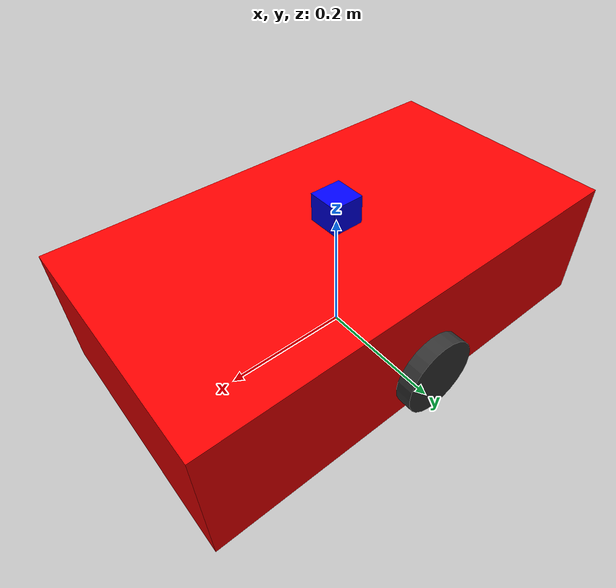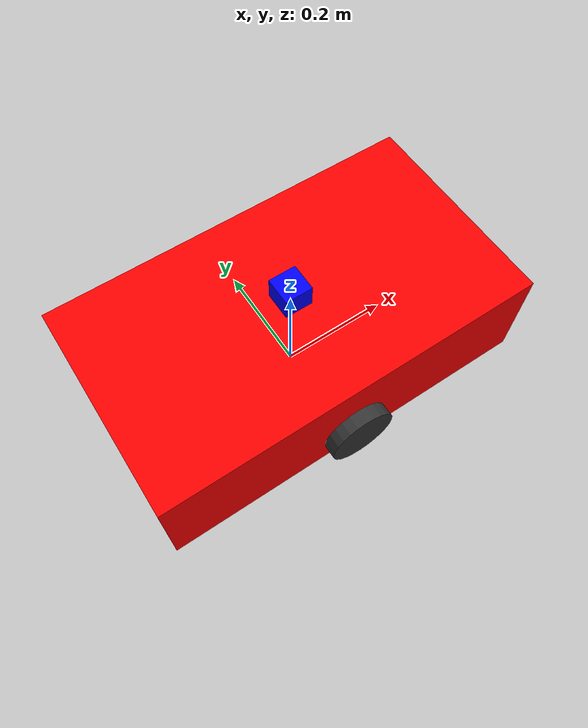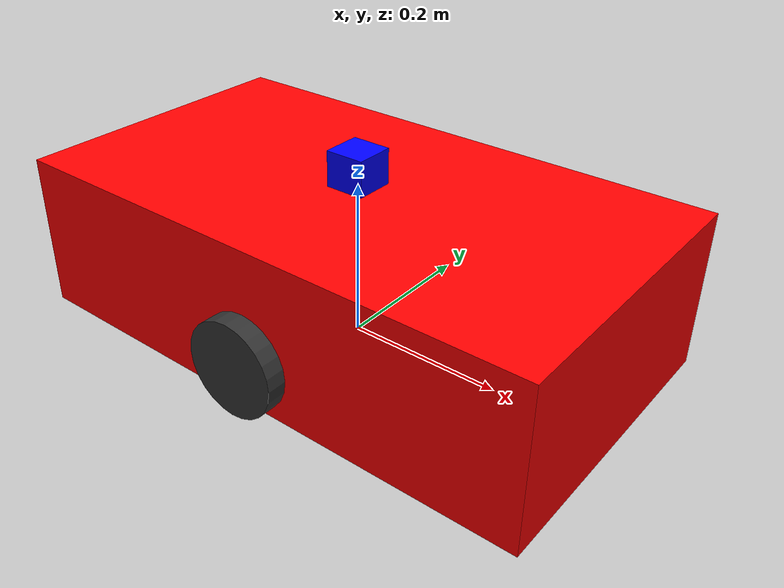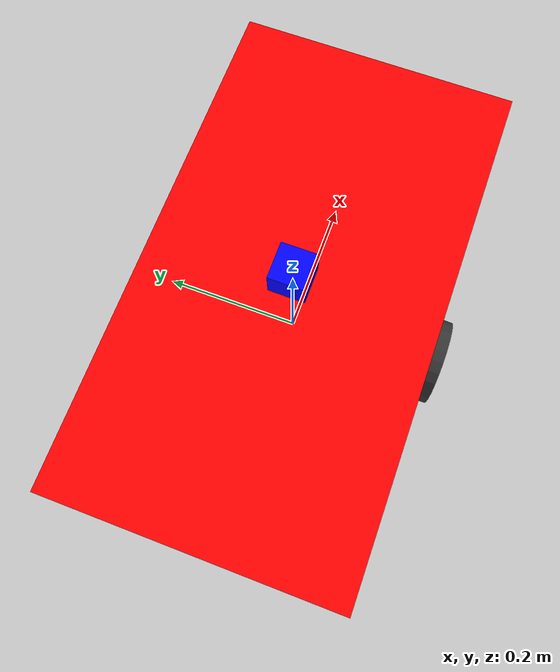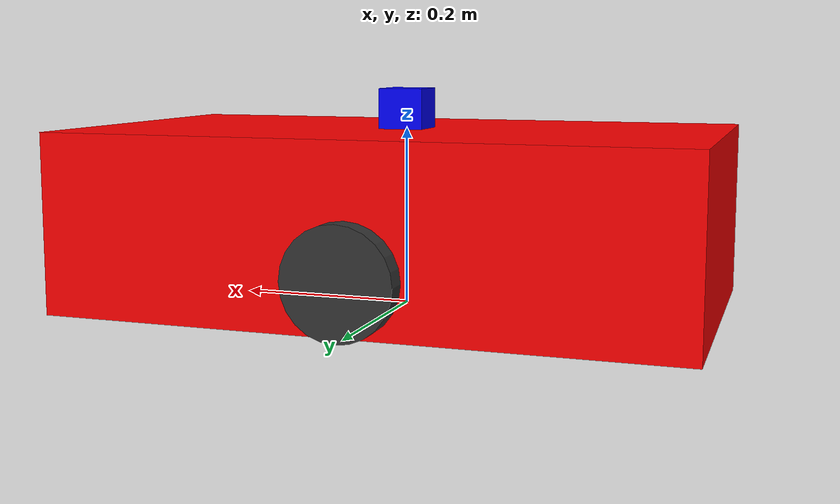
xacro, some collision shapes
<?xml version="1.0"?>
<robot name="basic_mobile_bot" xmlns:xacro="http://ros.org/xacro">
  <material name="material_base">
    <color rgba="1 0 0 1"/> </material>
  <material name="material_imu">
    <color rgba="0 0 1 1"/> </material>
  <material name="material_wheel">
    <color rgba="0.2 0.2 0.2 1"/> </material>

  <link name="base_footprint">
    <visual>
      <origin xyz="0 0 0" rpy="0 0 0"/>
      <geometry>
        <box size="0.001 0.001 0.001"/> </geometry>
    </visual>
  </link>

  <link name="base_link">
    <visual>
      <origin xyz="0 0 0" rpy="0 0 0"/>
      <geometry>
        <mesh filename="package://basic_mobile_robot/models/basic_mobile_bot_description/meshes/robot_base.stl" scale="1 1 1"/>
      </geometry>
      <material name="material_base"/>
    </visual>
    <collision>
      <origin xyz="0 0 0" rpy="0 0 0"/>
      <geometry>
        <box size="0.70 0.39 0.20"/> </geometry>
    </collision>
    <inertial>
      <origin xyz="0 0 0" rpy="0 0 0"/>
      <mass value="10.0"/>
      <inertia ixx="0.08" ixy="0.0" ixz="0.0" iyy="0.12" iyz="0.0" izz="0.10"/>
    </inertial>
  </link>

  <joint name="base_footprint_joint" type="fixed">
    <parent link="base_footprint"/>
    <child link="base_link"/>
    <origin xyz="0 0 0.10" rpy="0 0 0"/>
  </joint>

  <link name="imu_link">
    <visual>
      <origin xyz="0 0 0" rpy="0 0 0"/>
      <geometry>
        <box size="0.05 0.05 0.05"/> </geometry>
      <material name="material_imu"/>
    </visual>
    <collision>
      <origin xyz="0 0 0" rpy="0 0 0"/>
      <geometry>
        <box size="0.05 0.05 0.05"/>
      </geometry>
    </collision>
    <inertial>
      <origin xyz="0 0 0" rpy="0 0 0"/>
      <mass value="0.05"/>
      <inertia ixx="0.00001" ixy="0.0" ixz="0.0" iyy="0.00001" iyz="0.0" izz="0.00001"/>
    </inertial>
  </link>

  <joint name="imu_joint" type="fixed">
    <parent link="base_link"/>
    <child link="imu_link"/>
    <origin xyz="0 0 0.12" rpy="0 0 0"/>
  </joint>

  <xacro:property name="wheel_radius" value="0.06"/> <xacro:property name="wheel_thickness" value="0.04"/> <xacro:property name="wheel_y_offset" value="0.20"/>

  <link name="left_wheel_link">
    <visual>
      <origin xyz="0 0 0" rpy="${pi/2} 0 0"/>
      <geometry>
        <cylinder radius="${wheel_radius}" length="${wheel_thickness}"/>
      </geometry>
      <material name="material_wheel"/>
    </visual>
    <collision>
      <origin xyz="0 0 0" rpy="${pi/2} 0 0"/>
      <geometry>
        <cylinder radius="${wheel_radius}" length="${wheel_thickness}"/>
      </geometry>
    </collision>
    <inertial>
      <origin xyz="0 0 0" rpy="0 0 0"/>
      <mass value="0.5"/>
      <inertia ixx="0.001" ixy="0.0" ixz="0.0" iyy="0.001" iyz="0.0" izz="0.001"/>
    </inertial>
  </link>

  <link name="right_wheel_link">
    <visual>
      <origin xyz="0 0 0" rpy="${pi/2} 0 0"/>
      <geometry>
        <cylinder radius="${wheel_radius}" length="${wheel_thickness}"/>
      </geometry>
      <material name="material_wheel"/>
    </visual>
    <collision>
      <origin xyz="0 0 0" rpy="${pi/2} 0 0"/>
      <geometry>
        <cylinder radius="${wheel_radius}" length="${wheel_thickness}"/>
      </geometry>
    </collision>
    <inertial>
      <origin xyz="0 0 0" rpy="0 0 0"/>
      <mass value="0.5"/>
      <inertia ixx="0.001" ixy="0.0" ixz="0.0" iyy="0.001" iyz="0.0" izz="0.001"/>
    </inertial>
  </link>

  <joint name="left_wheel_joint" type="continuous">
    <parent link="base_link"/>
    <child link="left_wheel_link"/>
    <origin xyz="0.0 -${wheel_y_offset} -0.04" rpy="0 0 0"/>
    <axis xyz="0 1 0"/>
  </joint>

  <joint name="right_wheel_joint" type="continuous">
    <parent link="base_link"/>
    <child link="right_wheel_link"/>
    <origin xyz="0.0 ${wheel_y_offset} -0.04" rpy="0 0 0"/>
    <axis xyz="0 1 0"/>
  </joint>

  <link name="caster_wheel_link">
    <visual>
      <origin xyz="0 0 0" rpy="0 0 0"/>
      <geometry>
        <sphere radius="0.03"/> </geometry>
      <material name="material_wheel"/>
    </visual>
    <collision>
      <origin xyz="0 0 0" rpy="0 0 0"/>
      <geometry>
        <sphere radius="0.03"/>
      </geometry>
    </collision>
    <inertial>
      <origin xyz="0 0 0" rpy="0 0 0"/>
      <mass value="0.1"/>
      <inertia ixx="0.00001" ixy="0.0" ixz="0.0" iyy="0.00001" iyz="0.0" izz="0.00001"/>
    </inertial>
  </link>

  <joint name="caster_wheel_joint" type="fixed">
    <parent link="base_link"/>
    <child link="caster_wheel_link"/>
    <origin xyz="-0.30 0 -0.07" rpy="0 0 0"/>
  </joint>
  <gazebo>
    <plugin filename="libgazebo_ros2_control.so" name="gazebo_ros2_control">
      <robot_param>robot_description</robot_param>
      <robot_namespace>/</robot_namespace>
    </plugin>
  </gazebo>

  <transmission name="left_wheel_tran">
    <type>transmission_interface/SimpleTransmission</type>
    <joint name="left_wheel_joint">
      <hardwareInterface>hardware_interface/Velocity</hardwareInterface>
    </joint>
    <actuator name="left_wheel_motor">
      <hardwareInterface>hardware_interface/Velocity</hardwareInterface>
      <mechanicalReduction>1</mechanicalReduction>
    </actuator>
  </transmission>

  <transmission name="right_wheel_tran">
    <type>transmission_interface/SimpleTransmission</type>
    <joint name="right_wheel_joint">
      <hardwareInterface>hardware_interface/Velocity</hardwareInterface>
    </joint>
    <actuator name="right_wheel_motor">
      <hardwareInterface>hardware_interface/Velocity</hardwareInterface>
      <mechanicalReduction>1</mechanicalReduction>
    </actuator>
  </transmission>
  </robot>
